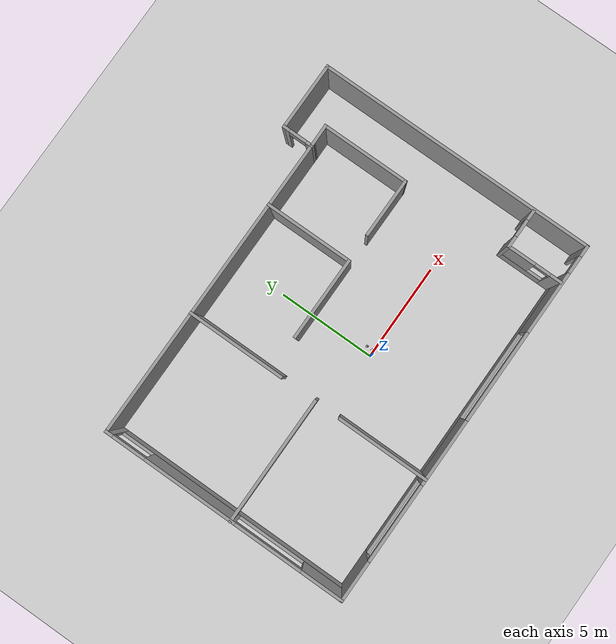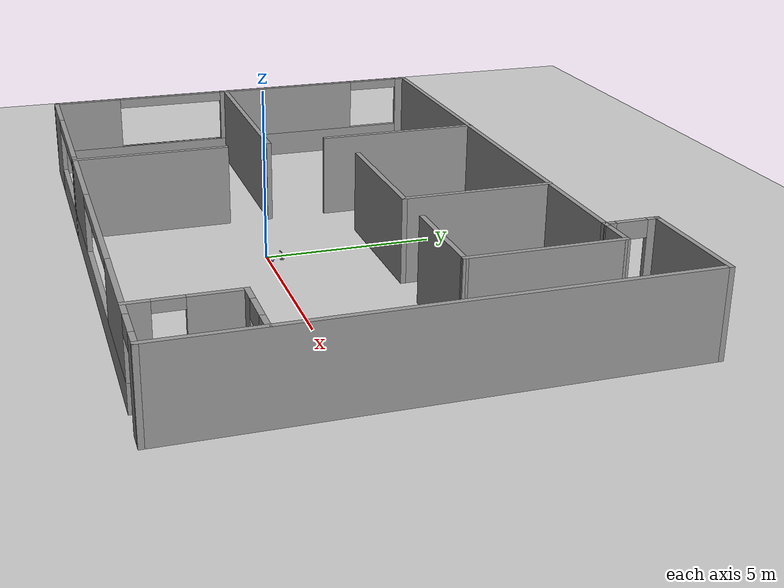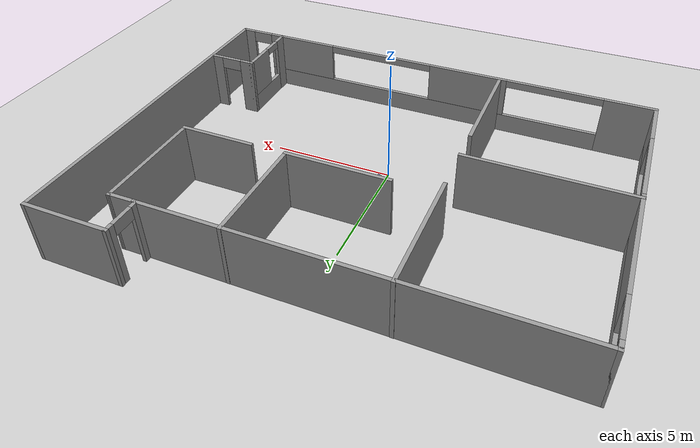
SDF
<?xml version="1.0" ?>
<sdf version="1.5">
  <world name="default">
    <!-- A global light source -->
    <include>
      <uri>model://sun</uri>
    </include>
    <!-- A ground plane -->
    <include>
      <uri>model://ground_plane</uri>
    </include>
    <!-- Trossen Robotics Offices -->
    <include>
      <uri>model://TrossenRoboticsOfficeBuilding</uri>
      <pose>0 2 0 0 0 0</pose>
    </include>
    <!-- Interbotix Vision Kit (Stand, D415, 4x Colored Blocks) -->
    <include>
      <uri>model://VisionKit</uri>
      <pose>0.3 0.4 0.01 0 0 1.574090</pose>
    </include>
    <model name="block_red">
      <pose>0.3 0.08 0.01 0 0 -0.2</pose>
      <link name="block_red_link">
        <inertial>
          <mass>0.1</mass>
        </inertial>
        <visual name="block_red_link_visual">
          <geometry>
            <box>
              <size>0.02 0.02 0.02</size>
            </box>
          </geometry>
          <material>
            <ambient>1.0 0 0 0</ambient>
          </material>
        </visual>
        <collision name="block_red_link_collision">
          <geometry>
            <box>
              <size>0.02 0.02 0.02</size>
            </box>
          </geometry>
        </collision>
      </link>
    </model>
    <model name="block_green">
      <pose>0.28 0.16 0.01 0 0 -0.1</pose>
      <link name="block_green_link">
        <inertial>
          <mass>0.1</mass>
        </inertial>
        <visual name="block_green_link_visual">
          <geometry>
            <box>
              <size>0.02 0.02 0.02</size>
            </box>
          </geometry>
          <material>
            <ambient>0 1.0 0 0</ambient>
          </material>
        </visual>
        <collision name="block_green_link_collision">
          <geometry>
            <box>
              <size>0.02 0.02 0.02</size>
            </box>
          </geometry>
        </collision>
      </link>
    </model>
    <model name="block_blue">
      <pose>0.35 0.12 0.01 0 0 -0.8</pose>
      <link name="block_blue_link">
        <inertial>
          <mass>0.1</mass>
        </inertial>
        <visual name="block_blue_link_visual">
          <geometry>
            <box>
              <size>0.02 0.02 0.02</size>
            </box>
          </geometry>
          <material>
            <ambient>0 0 1.0 0</ambient>
          </material>
        </visual>
        <collision name="block_blue_link_collision">
          <geometry>
            <box>
              <size>0.02 0.02 0.02</size>
            </box>
          </geometry>
        </collision>
      </link>
    </model>
    <model name="block_yellow">
      <pose>0.4 0.06 0.01 0 0 0.2</pose>
      <link name="block_yellow_link">
        <inertial>
          <mass>0.1</mass>
        </inertial>
        <visual name="block_yellow_link_visual">
          <geometry>
            <box>
              <size>0.02 0.02 0.02</size>
            </box>
          </geometry>
          <material>
            <ambient>1.0 1.0 0 0</ambient>
          </material>
        </visual>
        <collision name="block_yellow_link_collision">
          <geometry>
            <box>
              <size>0.02 0.02 0.02</size>
            </box>
          </geometry>
        </collision>
      </link>
    </model>
  </world>
</sdf>

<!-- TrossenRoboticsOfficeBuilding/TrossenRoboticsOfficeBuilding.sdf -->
<sdf version='1.7'>
  <model name='TrossenRoboticsOfficeBuilding'>
    <pose>-0.879095 0.576025 0 0 -0 0</pose>
    <link name='Wall_0'>
      <pose>-9.41899 -0.749926 0 0 -0 -1.5708</pose>
      <visual name='Wall_0_Visual_0'>
        <pose>-6.1662 0 1.25 0 -0 0</pose>
        <geometry>
          <box>
            <size>0.417592 0.15 2.5</size>
          </box>
        </geometry>
        <material>
          <script>
            <uri>file://media/materials/scripts/gazebo.material</uri>
            <name>Gazebo/Grey</name>
          </script>
          <ambient>1 1 1 1</ambient>
        </material>
        <meta>
          <layer>0</layer>
        </meta>
      </visual>
      <collision name='Wall_0_Collision_0'>
        <geometry>
          <box>
            <size>0.417592 0.15 2.5</size>
          </box>
        </geometry>
        <pose>-6.1662 0 1.25 0 -0 0</pose>
      </collision>
      <visual name='Wall_0_Visual_1'>
        <pose>0.208796 0 0.4 0 -0 0</pose>
        <geometry>
          <box>
            <size>12.3324 0.15 0.8</size>
          </box>
        </geometry>
        <material>
          <script>
            <uri>file://media/materials/scripts/gazebo.material</uri>
            <name>Gazebo/Grey</name>
          </script>
          <ambient>1 1 1 1</ambient>
        </material>
        <meta>
          <layer>0</layer>
        </meta>
      </visual>
      <collision name='Wall_0_Collision_1'>
        <geometry>
          <box>
            <size>12.3324 0.15 0.8</size>
          </box>
        </geometry>
        <pose>0.208796 0 0.4 0 -0 0</pose>
      </collision>
      <visual name='Wall_0_Visual_2'>
        <pose>-1.80949 0 1.65 0 -0 0</pose>
        <geometry>
          <box>
            <size>4.84784 0.15 1.7</size>
          </box>
        </geometry>
        <material>
          <script>
            <uri>file://media/materials/scripts/gazebo.material</uri>
            <name>Gazebo/Grey</name>
          </script>
          <ambient>1 1 1 1</ambient>
        </material>
        <meta>
          <layer>0</layer>
        </meta>
      </visual>
      <collision name='Wall_0_Collision_2'>
        <geometry>
          <box>
            <size>4.84784 0.15 1.7</size>
          </box>
        </geometry>
        <pose>-1.80949 0 1.65 0 -0 0</pose>
      </collision>
      <visual name='Wall_0_Visual_3'>
        <pose>5.25622 0 1.65 0 -0 0</pose>
        <geometry>
          <box>
            <size>2.23757 0.15 1.7</size>
          </box>
        </geometry>
        <material>
          <script>
            <uri>file://media/materials/scripts/gazebo.material</uri>
            <name>Gazebo/Grey</name>
          </script>
          <ambient>1 1 1 1</ambient>
        </material>
        <meta>
          <layer>0</layer>
        </meta>
      </visual>
      <collision name='Wall_0_Collision_3'>
        <geometry>
          <box>
            <size>2.23757 0.15 1.7</size>
          </box>
        </geometry>
        <pose>5.25622 0 1.65 0 -0 0</pose>
      </collision>
      <visual name='Wall_0_Visual_4'>
        <pose>2.37593 0 0.8 0 -0 0</pose>
        <geometry>
          <box>
            <size>3.523 0.15 0</size>
          </box>
        </geometry>
        <material>
          <script>
            <uri>file://media/materials/scripts/gazebo.material</uri>
            <name>Gazebo/Grey</name>
          </script>
          <ambient>1 1 1 1</ambient>
        </material>
        <meta>
          <layer>0</layer>
        </meta>
      </visual>
      <collision name='Wall_0_Collision_4'>
        <geometry>
          <box>
            <size>3.523 0.15 0</size>
          </box>
        </geometry>
        <pose>2.37593 0 0.8 0 -0 0</pose>
      </collision>
      <visual name='Wall_0_Visual_5'>
        <pose>-5.09541 0 2.35 0 -0 0</pose>
        <geometry>
          <box>
            <size>1.724 0.15 0.3</size>
          </box>
        </geometry>
        <material>
          <script>
            <uri>file://media/materials/scripts/gazebo.material</uri>
            <name>Gazebo/Grey</name>
          </script>
          <ambient>1 1 1 1</ambient>
        </material>
        <meta>
          <layer>0</layer>
        </meta>
      </visual>
      <collision name='Wall_0_Collision_5'>
        <geometry>
          <box>
            <size>1.724 0.15 0.3</size>
          </box>
        </geometry>
        <pose>-5.09541 0 2.35 0 -0 0</pose>
      </collision>
      <visual name='Wall_0_Visual_6'>
        <pose>2.37593 0 2.35 0 -0 0</pose>
        <geometry>
          <box>
            <size>3.523 0.15 0.3</size>
          </box>
        </geometry>
        <material>
          <script>
            <uri>file://media/materials/scripts/gazebo.material</uri>
            <name>Gazebo/Grey</name>
          </script>
          <ambient>1 1 1 1</ambient>
        </material>
        <meta>
          <layer>0</layer>
        </meta>
      </visual>
      <collision name='Wall_0_Collision_6'>
        <geometry>
          <box>
            <size>3.523 0.15 0.3</size>
          </box>
        </geometry>
        <pose>2.37593 0 2.35 0 -0 0</pose>
      </collision>
    </link>
    <link name='Wall_1'>
      <pose>0.006011 -7.04993 0 0 -0 0</pose>
      <visual name='Wall_1_Visual_0'>
        <pose>-8.45251 0 1.25 0 -0 0</pose>
        <geometry>
          <box>
            <size>2.09499 0.15 2.5</size>
          </box>
        </geometry>
        <material>
          <script>
            <uri>file://media/materials/scripts/gazebo.material</uri>
            <name>Gazebo/Grey</name>
          </script>
          <ambient>1 1 1 1</ambient>
        </material>
        <meta>
          <layer>0</layer>
        </meta>
      </visual>
      <collision name='Wall_1_Collision_0'>
        <geometry>
          <box>
            <size>2.09499 0.15 2.5</size>
          </box>
        </geometry>
        <pose>-8.45251 0 1.25 0 -0 0</pose>
      </collision>
      <visual name='Wall_1_Visual_1'>
        <pose>9.18754 0 1.25 0 -0 0</pose>
        <geometry>
          <box>
            <size>0.624916 0.15 2.5</size>
          </box>
        </geometry>
        <material>
          <script>
            <uri>file://media/materials/scripts/gazebo.material</uri>
            <name>Gazebo/Grey</name>
          </script>
          <ambient>1 1 1 1</ambient>
        </material>
        <meta>
          <layer>0</layer>
        </meta>
      </visual>
      <collision name='Wall_1_Collision_1'>
        <geometry>
          <box>
            <size>0.624916 0.15 2.5</size>
          </box>
        </geometry>
        <pose>9.18754 0 1.25 0 -0 0</pose>
      </collision>
      <visual name='Wall_1_Visual_2'>
        <pose>0.285035 0 0.4 0 -0 0</pose>
        <geometry>
          <box>
            <size>15.3801 0.15 0.8</size>
          </box>
        </geometry>
        <material>
          <script>
            <uri>file://media/materials/scripts/gazebo.material</uri>
            <name>Gazebo/Grey</name>
          </script>
          <ambient>1 1 1 1</ambient>
        </material>
        <meta>
          <layer>0</layer>
        </meta>
      </visual>
      <collision name='Wall_1_Collision_2'>
        <geometry>
          <box>
            <size>15.3801 0.15 0.8</size>
          </box>
        </geometry>
        <pose>0.285035 0 0.4 0 -0 0</pose>
      </collision>
      <visual name='Wall_1_Visual_3'>
        <pose>-1.67035 0 1.65 0 -0 0</pose>
        <geometry>
          <box>
            <size>3.42869 0.15 1.7</size>
          </box>
        </geometry>
        <material>
          <script>
            <uri>file://media/materials/scripts/gazebo.material</uri>
            <name>Gazebo/Grey</name>
          </script>
          <ambient>1 1 1 1</ambient>
        </material>
        <meta>
          <layer>0</layer>
        </meta>
      </visual>
      <collision name='Wall_1_Collision_3'>
        <geometry>
          <box>
            <size>3.42869 0.15 1.7</size>
          </box>
        </geometry>
        <pose>-1.67035 0 1.65 0 -0 0</pose>
      </collision>
      <visual name='Wall_1_Visual_4'>
        <pose>6.36821 0 1.65 0 -0 0</pose>
        <geometry>
          <box>
            <size>3.21375 0.15 1.7</size>
          </box>
        </geometry>
        <material>
          <script>
            <uri>file://media/materials/scripts/gazebo.material</uri>
            <name>Gazebo/Grey</name>
          </script>
          <ambient>1 1 1 1</ambient>
        </material>
        <meta>
          <layer>0</layer>
        </meta>
      </visual>
      <collision name='Wall_1_Collision_4'>
        <geometry>
          <box>
            <size>3.21375 0.15 1.7</size>
          </box>
        </geometry>
        <pose>6.36821 0 1.65 0 -0 0</pose>
      </collision>
      <visual name='Wall_1_Visual_5'>
        <pose>8.42508 0 2.25 0 -0 0</pose>
        <geometry>
          <box>
            <size>0.9 0.15 0.5</size>
          </box>
        </geometry>
        <material>
          <script>
            <uri>file://media/materials/scripts/gazebo.material</uri>
            <name>Gazebo/Grey</name>
          </script>
          <ambient>1 1 1 1</ambient>
        </material>
        <meta>
          <layer>0</layer>
        </meta>
      </visual>
      <collision name='Wall_1_Collision_5'>
        <geometry>
          <box>
            <size>0.9 0.15 0.5</size>
          </box>
        </geometry>
        <pose>8.42508 0 2.25 0 -0 0</pose>
      </collision>
      <visual name='Wall_1_Visual_6'>
        <pose>-5.39486 0 2.35 0 -0 0</pose>
        <geometry>
          <box>
            <size>4.02031 0.15 0.3</size>
          </box>
        </geometry>
        <material>
          <script>
            <uri>file://media/materials/scripts/gazebo.material</uri>
            <name>Gazebo/Grey</name>
          </script>
          <ambient>1 1 1 1</ambient>
        </material>
        <meta>
          <layer>0</layer>
        </meta>
      </visual>
      <collision name='Wall_1_Collision_6'>
        <geometry>
          <box>
            <size>4.02031 0.15 0.3</size>
          </box>
        </geometry>
        <pose>-5.39486 0 2.35 0 -0 0</pose>
      </collision>
      <visual name='Wall_1_Visual_7'>
        <pose>2.40266 0 2.35 0 -0 0</pose>
        <geometry>
          <box>
            <size>4.71734 0.15 0.3</size>
          </box>
        </geometry>
        <material>
          <script>
            <uri>file://media/materials/scripts/gazebo.material</uri>
            <name>Gazebo/Grey</name>
          </script>
          <ambient>1 1 1 1</ambient>
        </material>
        <meta>
          <layer>0</layer>
        </meta>
      </visual>
      <collision name='Wall_1_Collision_7'>
        <geometry>
          <box>
            <size>4.71734 0.15 0.3</size>
          </box>
        </geometry>
        <pose>2.40266 0 2.35 0 -0 0</pose>
      </collision>
    </link>
    <link name='Wall_10'>
      <collision name='Wall_10_Collision'>
        <geometry>
          <box>
            <size>6.5 0.15 2.5</size>
          </box>
        </geometry>
        <pose>0 0 1.25 0 -0 0</pose>
      </collision>
      <visual name='Wall_10_Visual'>
        <pose>0 0 1.25 0 -0 0</pose>
        <geometry>
          <box>
            <size>6.5 0.15 2.5</size>
          </box>
        </geometry>
        <material>
          <script>
            <uri>file://media/materials/scripts/gazebo.material</uri>
            <name>Gazebo/Grey</name>
          </script>
          <ambient>1 1 1 1</ambient>
        </material>
        <meta>
          <layer>0</layer>
        </meta>
      </visual>
      <pose>-6.2561 -1.14107 0 0 -0 0</pose>
    </link>
    <link name='Wall_15'>
      <collision name='Wall_15_Collision'>
        <geometry>
          <box>
            <size>4.709 0.15 2.5</size>
          </box>
        </geometry>
        <pose>0 0 1.25 0 -0 0</pose>
      </collision>
      <visual name='Wall_15_Visual'>
        <pose>0 0 1.25 0 -0 0</pose>
        <geometry>
          <box>
            <size>4.709 0.15 2.5</size>
          </box>
        </geometry>
        <material>
          <script>
            <uri>file://media/materials/scripts/gazebo.material</uri>
            <name>Gazebo/Grey</name>
          </script>
          <ambient>1 1 1 1</ambient>
        </material>
        <meta>
          <layer>0</layer>
        </meta>
      </visual>
      <pose>-3.08091 -4.77053 0 0 -0 -1.5708</pose>
    </link>
    <link name='Wall_18'>
      <collision name='Wall_18_Collision'>
        <geometry>
          <box>
            <size>5 0.15 2.5</size>
          </box>
        </geometry>
        <pose>0 0 1.25 0 -0 0</pose>
      </collision>
      <visual name='Wall_18_Visual'>
        <pose>0 0 1.25 0 -0 0</pose>
        <geometry>
          <box>
            <size>5 0.15 2.5</size>
          </box>
        </geometry>
        <material>
          <script>
            <uri>file://media/materials/scripts/gazebo.material</uri>
            <name>Gazebo/Grey</name>
          </script>
          <ambient>1 1 1 1</ambient>
        </material>
        <meta>
          <layer>0</layer>
        </meta>
      </visual>
      <pose>-3.0811 3.13393 0 0 -0 1.5708</pose>
    </link>
    <link name='Wall_2'>
      <collision name='Wall_2_Collision'>
        <geometry>
          <box>
            <size>14.25 0.15 2.5</size>
          </box>
        </geometry>
        <pose>0 0 1.25 0 -0 0</pose>
      </collision>
      <visual name='Wall_2_Visual'>
        <pose>0 0 1.25 0 -0 0</pose>
        <geometry>
          <box>
            <size>14.25 0.15 2.5</size>
          </box>
        </geometry>
        <material>
          <script>
            <uri>file://media/materials/scripts/gazebo.material</uri>
            <name>Gazebo/Grey</name>
          </script>
          <ambient>1 1 1 1</ambient>
        </material>
        <meta>
          <layer>0</layer>
        </meta>
      </visual>
      <pose>9.43105 2.5e-05 0 0 -0 1.57079</pose>
    </link>
    <link name='Wall_20'>
      <collision name='Wall_20_Collision'>
        <geometry>
          <box>
            <size>4.5 0.15 2.5</size>
          </box>
        </geometry>
        <pose>0 0 1.25 0 -0 0</pose>
      </collision>
      <visual name='Wall_20_Visual'>
        <pose>0 0 1.25 0 -0 0</pose>
        <geometry>
          <box>
            <size>4.5 0.15 2.5</size>
          </box>
        </geometry>
        <material>
          <script>
            <uri>file://media/materials/scripts/gazebo.material</uri>
            <name>Gazebo/Grey</name>
          </script>
          <ambient>1 1 1 1</ambient>
        </material>
        <meta>
          <layer>0</layer>
        </meta>
      </visual>
      <pose>2.81816 3.38641 0 0 -0 -1.5708</pose>
    </link>
    <link name='Wall_21'>
      <collision name='Wall_21_Collision'>
        <geometry>
          <box>
            <size>4.25 0.15 2.5</size>
          </box>
        </geometry>
        <pose>0 0 1.25 0 -0 0</pose>
      </collision>
      <visual name='Wall_21_Visual'>
        <pose>0 0 1.25 0 -0 0</pose>
        <geometry>
          <box>
            <size>4.25 0.15 2.5</size>
          </box>
        </geometry>
        <material>
          <script>
            <uri>file://media/materials/scripts/gazebo.material</uri>
            <name>Gazebo/Grey</name>
          </script>
          <ambient>1 1 1 1</ambient>
        </material>
        <meta>
          <layer>0</layer>
        </meta>
      </visual>
      <pose>0.768162 1.21141 0 0 -0 3.14159</pose>
    </link>
    <link name='Wall_24'>
      <collision name='Wall_24_Collision'>
        <geometry>
          <box>
            <size>4.5 0.15 2.5</size>
          </box>
        </geometry>
        <pose>0 0 1.25 0 -0 0</pose>
      </collision>
      <visual name='Wall_24_Visual'>
        <pose>0 0 1.25 0 -0 0</pose>
        <geometry>
          <box>
            <size>4.5 0.15 2.5</size>
          </box>
        </geometry>
        <material>
          <script>
            <uri>file://media/materials/scripts/gazebo.material</uri>
            <name>Gazebo/Grey</name>
          </script>
          <ambient>1 1 1 1</ambient>
        </material>
        <meta>
          <layer>0</layer>
        </meta>
      </visual>
      <pose>7.16816 3.38641 0 0 -0 1.5708</pose>
    </link>
    <link name='Wall_25'>
      <collision name='Wall_25_Collision'>
        <geometry>
          <box>
            <size>1.13722 0.15 2.5</size>
          </box>
        </geometry>
        <pose>0 0 1.25 0 -0 0</pose>
      </collision>
      <visual name='Wall_25_Visual'>
        <pose>0 0 1.25 0 -0 0</pose>
        <geometry>
          <box>
            <size>1.13722 0.15 2.5</size>
          </box>
        </geometry>
        <material>
          <script>
            <uri>file://media/materials/scripts/gazebo.material</uri>
            <name>Gazebo/Grey</name>
          </script>
          <ambient>1 1 1 1</ambient>
        </material>
        <meta>
          <layer>0</layer>
        </meta>
      </visual>
      <pose>6.67459 5.55574 0 0 -0 -3.13011</pose>
    </link>
    <link name='Wall_27'>
      <collision name='Wall_27_Collision'>
        <geometry>
          <box>
            <size>3.04868 0.15 2.5</size>
          </box>
        </geometry>
        <pose>0 0 1.25 0 -0 0</pose>
      </collision>
      <visual name='Wall_27_Visual'>
        <pose>0 0 1.25 0 -0 0</pose>
        <geometry>
          <box>
            <size>3.04868 0.15 2.5</size>
          </box>
        </geometry>
        <material>
          <script>
            <uri>file://media/materials/scripts/gazebo.material</uri>
            <name>Gazebo/Grey</name>
          </script>
          <ambient>1 1 1 1</ambient>
        </material>
        <meta>
          <layer>0</layer>
        </meta>
      </visual>
      <pose>5.71882 1.21452 0 0 -0 -0.002145</pose>
    </link>
    <link name='Wall_3'>
      <collision name='Wall_3_Collision'>
        <geometry>
          <box>
            <size>3.5 0.15 2.5</size>
          </box>
        </geometry>
        <pose>0 0 1.25 0 -0 0</pose>
      </collision>
      <visual name='Wall_3_Visual'>
        <pose>0 0 1.25 0 -0 0</pose>
        <geometry>
          <box>
            <size>3.5 0.15 2.5</size>
          </box>
        </geometry>
        <material>
          <script>
            <uri>file://media/materials/scripts/gazebo.material</uri>
            <name>Gazebo/Grey</name>
          </script>
          <ambient>1 1 1 1</ambient>
        </material>
        <meta>
          <layer>0</layer>
        </meta>
      </visual>
      <pose>7.7561 7.04997 0 0 -0 3.14159</pose>
    </link>
    <link name='Wall_31'>
      <pose>6.0811 6.29948 0 0 -0 -1.5708</pose>
      <visual name='Wall_31_Visual_0'>
        <pose>-0.636014 0 1.25 0 -0 0</pose>
        <geometry>
          <box>
            <size>0.378971 0.15 2.5</size>
          </box>
        </geometry>
        <material>
          <script>
            <uri>file://media/materials/scripts/gazebo.material</uri>
            <name>Gazebo/Grey</name>
          </script>
          <ambient>1 1 1 1</ambient>
        </material>
        <meta>
          <layer>0</layer>
        </meta>
      </visual>
      <collision name='Wall_31_Collision_0'>
        <geometry>
          <box>
            <size>0.378971 0.15 2.5</size>
          </box>
        </geometry>
        <pose>-0.636014 0 1.25 0 -0 0</pose>
      </collision>
      <visual name='Wall_31_Visual_1'>
        <pose>0.639486 0 1.25 0 -0 0</pose>
        <geometry>
          <box>
            <size>0.372029 0.15 2.5</size>
          </box>
        </geometry>
        <material>
          <script>
            <uri>file://media/materials/scripts/gazebo.material</uri>
            <name>Gazebo/Grey</name>
          </script>
          <ambient>1 1 1 1</ambient>
        </material>
        <meta>
          <layer>0</layer>
        </meta>
      </visual>
      <collision name='Wall_31_Collision_1'>
        <geometry>
          <box>
            <size>0.372029 0.15 2.5</size>
          </box>
        </geometry>
        <pose>0.639486 0 1.25 0 -0 0</pose>
      </collision>
      <visual name='Wall_31_Visual_2'>
        <pose>0.003471 0 2.25 0 -0 0</pose>
        <geometry>
          <box>
            <size>0.9 0.15 0.5</size>
          </box>
        </geometry>
        <material>
          <script>
            <uri>file://media/materials/scripts/gazebo.material</uri>
            <name>Gazebo/Grey</name>
          </script>
          <ambient>1 1 1 1</ambient>
        </material>
        <meta>
          <layer>0</layer>
        </meta>
      </visual>
      <collision name='Wall_31_Collision_2'>
        <geometry>
          <box>
            <size>0.9 0.15 0.5</size>
          </box>
        </geometry>
        <pose>0.003471 0 2.25 0 -0 0</pose>
      </collision>
    </link>
    <link name='Wall_33'>
      <pose>8.43109 -4.20702 0 0 -0 0</pose>
      <visual name='Wall_33_Visual_0'>
        <pose>-0.761405 0 1.25 0 -0 0</pose>
        <geometry>
          <box>
            <size>0.62319 0.15 2.5</size>
          </box>
        </geometry>
        <material>
          <script>
            <uri>file://media/materials/scripts/gazebo.material</uri>
            <name>Gazebo/Grey</name>
          </script>
          <ambient>1 1 1 1</ambient>
        </material>
        <meta>
          <layer>0</layer>
        </meta>
      </visual>
      <collision name='Wall_33_Collision_0'>
        <geometry>
          <box>
            <size>0.62319 0.15 2.5</size>
          </box>
        </geometry>
        <pose>-0.761405 0 1.25 0 -0 0</pose>
      </collision>
      <visual name='Wall_33_Visual_1'>
        <pose>0.761595 0 1.25 0 -0 0</pose>
        <geometry>
          <box>
            <size>0.62281 0.15 2.5</size>
          </box>
        </geometry>
        <material>
          <script>
            <uri>file://media/materials/scripts/gazebo.material</uri>
            <name>Gazebo/Grey</name>
          </script>
          <ambient>1 1 1 1</ambient>
        </material>
        <meta>
          <layer>0</layer>
        </meta>
      </visual>
      <collision name='Wall_33_Collision_1'>
        <geometry>
          <box>
            <size>0.62281 0.15 2.5</size>
          </box>
        </geometry>
        <pose>0.761595 0 1.25 0 -0 0</pose>
      </collision>
      <visual name='Wall_33_Visual_2'>
        <pose>0.00019 0 2.25 0 -0 0</pose>
        <geometry>
          <box>
            <size>0.9 0.15 0.5</size>
          </box>
        </geometry>
        <material>
          <script>
            <uri>file://media/materials/scripts/gazebo.material</uri>
            <name>Gazebo/Grey</name>
          </script>
          <ambient>1 1 1 1</ambient>
        </material>
        <meta>
          <layer>0</layer>
        </meta>
      </visual>
      <collision name='Wall_33_Collision_2'>
        <geometry>
          <box>
            <size>0.9 0.15 0.5</size>
          </box>
        </geometry>
        <pose>0.00019 0 2.25 0 -0 0</pose>
      </collision>
    </link>
    <link name='Wall_6'>
      <collision name='Wall_6_Collision'>
        <geometry>
          <box>
            <size>15.75 0.15 2.5</size>
          </box>
        </geometry>
        <pose>0 0 1.25 0 -0 0</pose>
      </collision>
      <visual name='Wall_6_Visual'>
        <pose>0 0 1.25 0 -0 0</pose>
        <geometry>
          <box>
            <size>15.75 0.15 2.5</size>
          </box>
        </geometry>
        <material>
          <script>
            <uri>file://media/materials/scripts/gazebo.material</uri>
            <name>Gazebo/Grey</name>
          </script>
          <ambient>1 1 1 1</ambient>
        </material>
        <meta>
          <layer>0</layer>
        </meta>
      </visual>
      <pose>-1.61899 5.55007 0 0 -0 0</pose>
    </link>
    <link name='Wall_8'>
      <pose>7.43326 -5.62667 0 0 -0 1.57091</pose>
      <visual name='Wall_8_Visual_0'>
        <pose>-1.14327 0 1.25 0 -0 0</pose>
        <geometry>
          <box>
            <size>0.702754 0.15 2.5</size>
          </box>
        </geometry>
        <material>
          <script>
            <uri>file://media/materials/scripts/gazebo.material</uri>
            <name>Gazebo/Grey</name>
          </script>
          <ambient>1 1 1 1</ambient>
        </material>
        <meta>
          <layer>0</layer>
        </meta>
      </visual>
      <collision name='Wall_8_Collision_0'>
        <geometry>
          <box>
            <size>0.702754 0.15 2.5</size>
          </box>
        </geometry>
        <pose>-1.14327 0 1.25 0 -0 0</pose>
      </collision>
      <visual name='Wall_8_Visual_1'>
        <pose>0.351377 0 0.4 0 -0 0</pose>
        <geometry>
          <box>
            <size>2.28653 0.15 0.8</size>
          </box>
        </geometry>
        <material>
          <script>
            <uri>file://media/materials/scripts/gazebo.material</uri>
            <name>Gazebo/Grey</name>
          </script>
          <ambient>1 1 1 1</ambient>
        </material>
        <meta>
          <layer>0</layer>
        </meta>
      </visual>
      <collision name='Wall_8_Collision_1'>
        <geometry>
          <box>
            <size>2.28653 0.15 0.8</size>
          </box>
        </geometry>
        <pose>0.351377 0 0.4 0 -0 0</pose>
      </collision>
      <visual name='Wall_8_Visual_2'>
        <pose>0.751377 0 1.65 0 -0 0</pose>
        <geometry>
          <box>
            <size>1.48653 0.15 1.7</size>
          </box>
        </geometry>
        <material>
          <script>
            <uri>file://media/materials/scripts/gazebo.material</uri>
            <name>Gazebo/Grey</name>
          </script>
          <ambient>1 1 1 1</ambient>
        </material>
        <meta>
          <layer>0</layer>
        </meta>
      </visual>
      <collision name='Wall_8_Collision_2'>
        <geometry>
          <box>
            <size>1.48653 0.15 1.7</size>
          </box>
        </geometry>
        <pose>0.751377 0 1.65 0 -0 0</pose>
      </collision>
      <visual name='Wall_8_Visual_3'>
        <pose>-0.39189 0 2.35 0 -0 0</pose>
        <geometry>
          <box>
            <size>0.8 0.15 0.3</size>
          </box>
        </geometry>
        <material>
          <script>
            <uri>file://media/materials/scripts/gazebo.material</uri>
            <name>Gazebo/Grey</name>
          </script>
          <ambient>1 1 1 1</ambient>
        </material>
        <meta>
          <layer>0</layer>
        </meta>
      </visual>
      <collision name='Wall_8_Collision_3'>
        <geometry>
          <box>
            <size>0.8 0.15 0.3</size>
          </box>
        </geometry>
        <pose>-0.39189 0 2.35 0 -0 0</pose>
      </collision>
    </link>
    <static>1</static>
  </model>
</sdf>

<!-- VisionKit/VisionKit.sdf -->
<sdf version='1.7'>
  <model name="VisionKit">
    <pose>0 0 0 0 0 0 0</pose>
    <link name="stand">
      <visual name="stand_visual">
        <pose>0 0 0 0 0 0 0</pose>
        <geometry>
          <mesh>
            <uri>model://VisionKit/stand.stl</uri>
            <scale>0.001 0.001 0.001</scale>
          </mesh>
        </geometry>
      </visual>
      <collision name="stand_collision">
        <pose>0 0 0 0 0 0 0</pose>
        <geometry>
          <mesh>
            <uri>model://VisionKit/stand.stl</uri>
            <scale>0.001 0.001 0.001</scale>
          </mesh>
        </geometry>
      </collision>
    </link>
    <link name="camera">
      <visual name="camera_visual">
        <pose>-0.056011 0.016227 0.274459 0 -0.785397 0</pose>
        <geometry>
          <mesh>
            <uri>model://RealSenseD415/camera.stl</uri>
            <scale>0.001 0.001 0.001</scale>
          </mesh>
        </geometry>
      </visual>
      <collision name="camera_collision">
        <pose>0 0 0 0 0 0 0</pose>
        <geometry>
          <mesh>
            <uri>model://RealSenseD415/camera.stl</uri>
            <scale>0.001 0.001 0.001</scale>
          </mesh>
        </geometry>
      </collision>
    </link>
    <static>1</static>
  </model>
</sdf>
